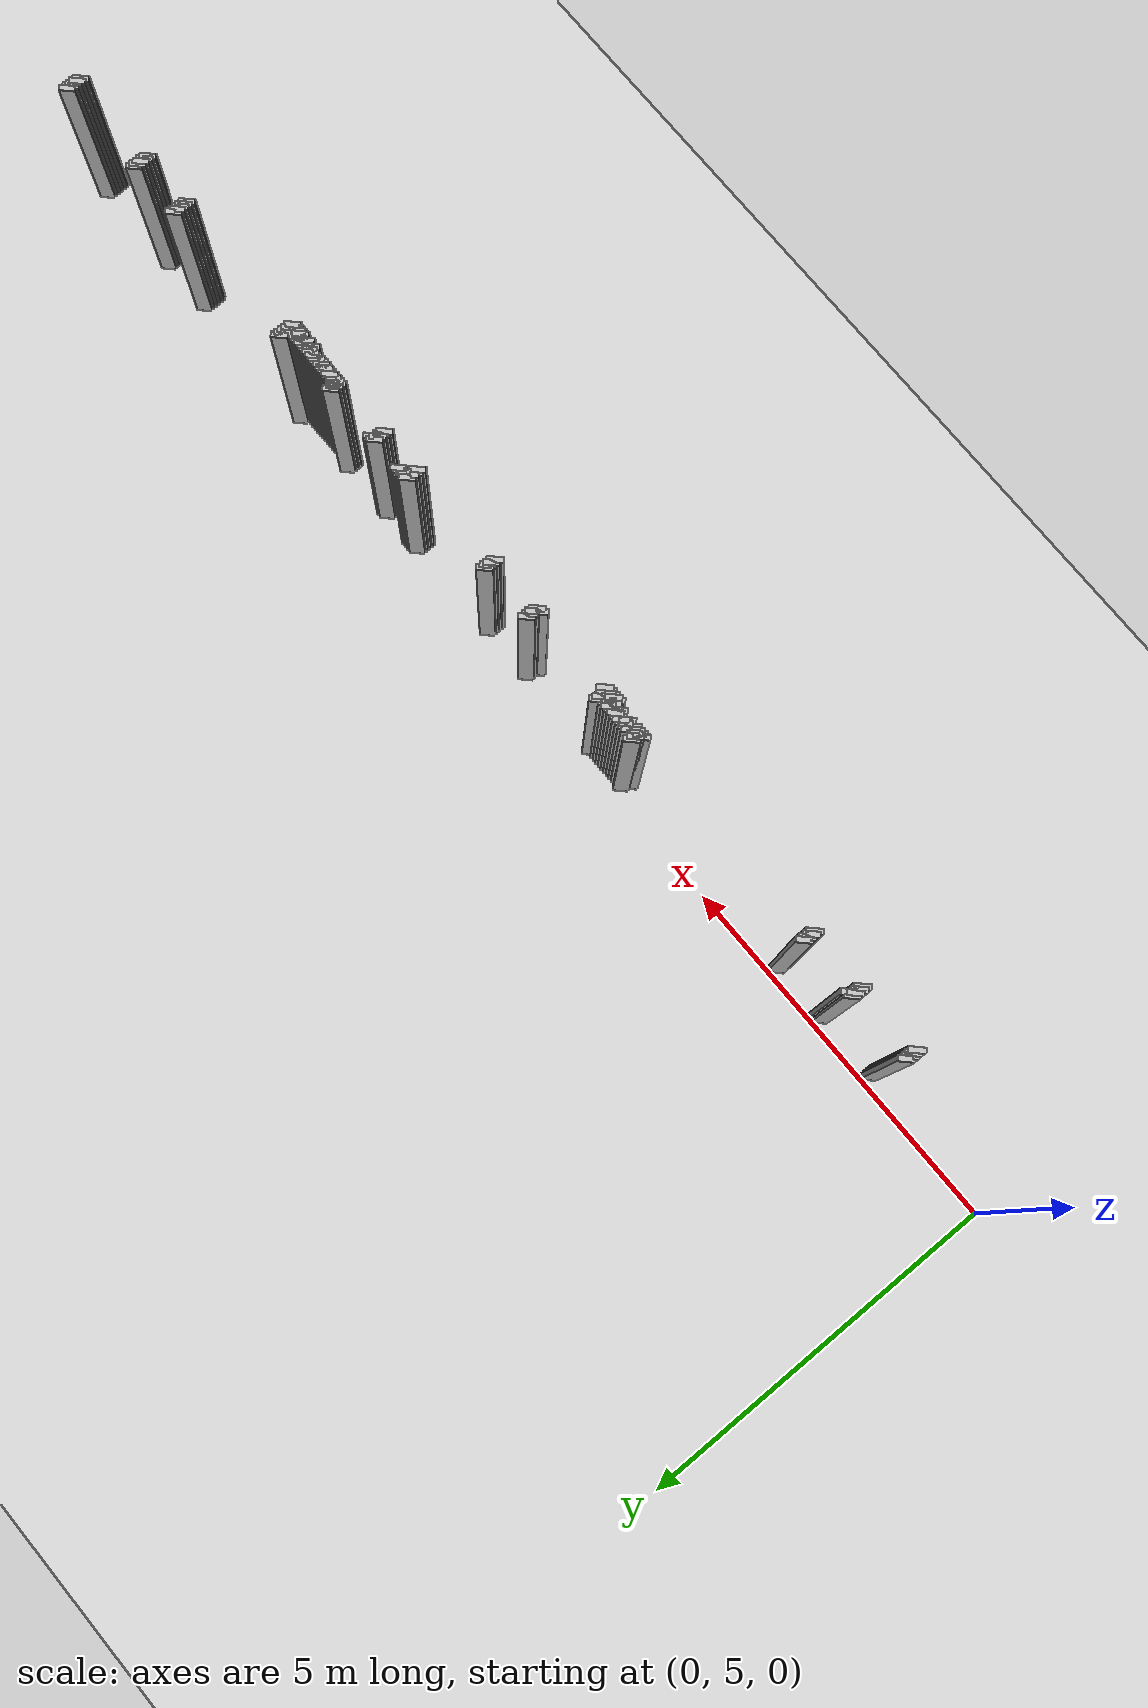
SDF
<sdf version="1.5">
 <world name="default">
  <include><uri>model://ground_plane</uri></include>
  <include><uri>model://sun</uri></include>
  <model name="grey_wall_3075">
   <static>1</static>
   <link name="link">
    <pose>13.0 4.95  1.4 0 0 -0.7853981633974483</pose>
    <collision name="collision">
     <geometry><box><size>0.07071067811865576 .2  2.8</size></box></geometry>
    </collision>
    <visual name="visual">
     <cast_shadows>0</cast_shadows>
     <geometry><box><size>0.07071067811865576 .2  2.8</size></box></geometry>
    </visual>
   </link>
  </model>
  <model name="grey_wall_3076">
   <static>1</static>
   <link name="link">
    <pose>15.0 4.95  1.4 0 0 -0.7853981633974483</pose>
    <collision name="collision">
     <geometry><box><size>0.07071067811865576 .2  2.8</size></box></geometry>
    </collision>
    <visual name="visual">
     <cast_shadows>0</cast_shadows>
     <geometry><box><size>0.07071067811865576 .2  2.8</size></box></geometry>
    </visual>
   </link>
  </model>
  <model name="grey_wall_3077">
   <static>1</static>
   <link name="link">
    <pose>15.75 4.95  1.4 0 0 -0.7853981633974483</pose>
    <collision name="collision">
     <geometry><box><size>0.07071067811865576 .2  2.8</size></box></geometry>
    </collision>
    <visual name="visual">
     <cast_shadows>0</cast_shadows>
     <geometry><box><size>0.07071067811865576 .2  2.8</size></box></geometry>
    </visual>
   </link>
  </model>
  <model name="grey_wall_3078">
   <static>1</static>
   <link name="link">
    <pose>17.05 4.95  1.4 0 0 -0.7853981633974838</pose>
    <collision name="collision">
     <geometry><box><size>0.07071067811865325 .2  2.8</size></box></geometry>
    </collision>
    <visual name="visual">
     <cast_shadows>0</cast_shadows>
     <geometry><box><size>0.07071067811865325 .2  2.8</size></box></geometry>
    </visual>
   </link>
  </model>
  <model name="grey_wall_3079">
   <static>1</static>
   <link name="link">
    <pose>2.0500000000000003 4.9  1.4 0 0 -0.7853981633974572</pose>
    <collision name="collision">
     <geometry><box><size>0.07071067811865513 .2  2.8</size></box></geometry>
    </collision>
    <visual name="visual">
     <cast_shadows>0</cast_shadows>
     <geometry><box><size>0.07071067811865513 .2  2.8</size></box></geometry>
    </visual>
   </link>
  </model>
  <model name="grey_wall_3080">
   <static>1</static>
   <link name="link">
    <pose>2.95 4.9  1.4 0 0 -0.7853981633974572</pose>
    <collision name="collision">
     <geometry><box><size>0.07071067811865513 .2  2.8</size></box></geometry>
    </collision>
    <visual name="visual">
     <cast_shadows>0</cast_shadows>
     <geometry><box><size>0.07071067811865513 .2  2.8</size></box></geometry>
    </visual>
   </link>
  </model>
  <model name="grey_wall_3081">
   <static>1</static>
   <link name="link">
    <pose>3.0 4.9  1.4 0 0 -0.7853981633974572</pose>
    <collision name="collision">
     <geometry><box><size>0.07071067811865513 .2  2.8</size></box></geometry>
    </collision>
    <visual name="visual">
     <cast_shadows>0</cast_shadows>
     <geometry><box><size>0.07071067811865513 .2  2.8</size></box></geometry>
    </visual>
   </link>
  </model>
  <model name="grey_wall_3082">
   <static>1</static>
   <link name="link">
    <pose>3.75 4.9  1.4 0 0 -0.7853981633974572</pose>
    <collision name="collision">
     <geometry><box><size>0.07071067811865513 .2  2.8</size></box></geometry>
    </collision>
    <visual name="visual">
     <cast_shadows>0</cast_shadows>
     <geometry><box><size>0.07071067811865513 .2  2.8</size></box></geometry>
    </visual>
   </link>
  </model>
  <model name="grey_wall_3083">
   <static>1</static>
   <link name="link">
    <pose>6.7 4.9  1.4 0 0 -0.7853981633974483</pose>
    <collision name="collision">
     <geometry><box><size>0.07071067811865576 .2  2.8</size></box></geometry>
    </collision>
    <visual name="visual">
     <cast_shadows>0</cast_shadows>
     <geometry><box><size>0.07071067811865576 .2  2.8</size></box></geometry>
    </visual>
   </link>
  </model>
  <model name="grey_wall_3084">
   <static>1</static>
   <link name="link">
    <pose>7.300000000000001 4.9  1.4 0 0 -0.7853981633974483</pose>
    <collision name="collision">
     <geometry><box><size>0.07071067811865576 .2  2.8</size></box></geometry>
    </collision>
    <visual name="visual">
     <cast_shadows>0</cast_shadows>
     <geometry><box><size>0.07071067811865576 .2  2.8</size></box></geometry>
    </visual>
   </link>
  </model>
  <model name="grey_wall_3085">
   <static>1</static>
   <link name="link">
    <pose>8.55 4.9  1.4 0 0 -0.7853981633974483</pose>
    <collision name="collision">
     <geometry><box><size>0.07071067811865576 .2  2.8</size></box></geometry>
    </collision>
    <visual name="visual">
     <cast_shadows>0</cast_shadows>
     <geometry><box><size>0.07071067811865576 .2  2.8</size></box></geometry>
    </visual>
   </link>
  </model>
  <model name="grey_wall_3086">
   <static>1</static>
   <link name="link">
    <pose>9.3 4.9  1.4 0 0 -0.7853981633974483</pose>
    <collision name="collision">
     <geometry><box><size>0.07071067811865576 .2  2.8</size></box></geometry>
    </collision>
    <visual name="visual">
     <cast_shadows>0</cast_shadows>
     <geometry><box><size>0.07071067811865576 .2  2.8</size></box></geometry>
    </visual>
   </link>
  </model>
  <model name="grey_wall_3087">
   <static>1</static>
   <link name="link">
    <pose>10.700000000000001 4.9  1.4 0 0 -0.7853981633974483</pose>
    <collision name="collision">
     <geometry><box><size>0.07071067811865576 .2  2.8</size></box></geometry>
    </collision>
    <visual name="visual">
     <cast_shadows>0</cast_shadows>
     <geometry><box><size>0.07071067811865576 .2  2.8</size></box></geometry>
    </visual>
   </link>
  </model>
  <model name="grey_wall_3088">
   <static>1</static>
   <link name="link">
    <pose>10.75 4.9  1.4 0 0 -0.7853981633974483</pose>
    <collision name="collision">
     <geometry><box><size>0.07071067811865576 .2  2.8</size></box></geometry>
    </collision>
    <visual name="visual">
     <cast_shadows>0</cast_shadows>
     <geometry><box><size>0.07071067811865576 .2  2.8</size></box></geometry>
    </visual>
   </link>
  </model>
  <model name="grey_wall_3089">
   <static>1</static>
   <link name="link">
    <pose>10.8 4.9  1.4 0 0 -0.7853981633974483</pose>
    <collision name="collision">
     <geometry><box><size>0.07071067811865576 .2  2.8</size></box></geometry>
    </collision>
    <visual name="visual">
     <cast_shadows>0</cast_shadows>
     <geometry><box><size>0.07071067811865576 .2  2.8</size></box></geometry>
    </visual>
   </link>
  </model>
  <model name="grey_wall_3090">
   <static>1</static>
   <link name="link">
    <pose>10.850000000000001 4.9  1.4 0 0 -0.7853981633974483</pose>
    <collision name="collision">
     <geometry><box><size>0.07071067811865576 .2  2.8</size></box></geometry>
    </collision>
    <visual name="visual">
     <cast_shadows>0</cast_shadows>
     <geometry><box><size>0.07071067811865576 .2  2.8</size></box></geometry>
    </visual>
   </link>
  </model>
  <model name="grey_wall_3091">
   <static>1</static>
   <link name="link">
    <pose>11.3 4.9  1.4 0 0 -0.7853981633974483</pose>
    <collision name="collision">
     <geometry><box><size>0.07071067811865576 .2  2.8</size></box></geometry>
    </collision>
    <visual name="visual">
     <cast_shadows>0</cast_shadows>
     <geometry><box><size>0.07071067811865576 .2  2.8</size></box></geometry>
    </visual>
   </link>
  </model>
  <model name="grey_wall_3092">
   <static>1</static>
   <link name="link">
    <pose>11.350000000000001 4.9  1.4 0 0 -0.7853981633974483</pose>
    <collision name="collision">
     <geometry><box><size>0.07071067811865576 .2  2.8</size></box></geometry>
    </collision>
    <visual name="visual">
     <cast_shadows>0</cast_shadows>
     <geometry><box><size>0.07071067811865576 .2  2.8</size></box></geometry>
    </visual>
   </link>
  </model>
  <model name="grey_wall_3093">
   <static>1</static>
   <link name="link">
    <pose>12.100000000000001 4.9  1.4 0 0 -0.7853981633974483</pose>
    <collision name="collision">
     <geometry><box><size>0.07071067811865576 .2  2.8</size></box></geometry>
    </collision>
    <visual name="visual">
     <cast_shadows>0</cast_shadows>
     <geometry><box><size>0.07071067811865576 .2  2.8</size></box></geometry>
    </visual>
   </link>
  </model>
  <model name="grey_wall_3094">
   <static>1</static>
   <link name="link">
    <pose>13.0 4.9  1.4 0 0 -0.7853981633974483</pose>
    <collision name="collision">
     <geometry><box><size>0.07071067811865576 .2  2.8</size></box></geometry>
    </collision>
    <visual name="visual">
     <cast_shadows>0</cast_shadows>
     <geometry><box><size>0.07071067811865576 .2  2.8</size></box></geometry>
    </visual>
   </link>
  </model>
  <model name="grey_wall_3095">
   <static>1</static>
   <link name="link">
    <pose>15.0 4.9  1.4 0 0 -0.7853981633974483</pose>
    <collision name="collision">
     <geometry><box><size>0.07071067811865576 .2  2.8</size></box></geometry>
    </collision>
    <visual name="visual">
     <cast_shadows>0</cast_shadows>
     <geometry><box><size>0.07071067811865576 .2  2.8</size></box></geometry>
    </visual>
   </link>
  </model>
  <model name="grey_wall_3096">
   <static>1</static>
   <link name="link">
    <pose>15.75 4.9  1.4 0 0 -0.7853981633974483</pose>
    <collision name="collision">
     <geometry><box><size>0.07071067811865576 .2  2.8</size></box></geometry>
    </collision>
    <visual name="visual">
     <cast_shadows>0</cast_shadows>
     <geometry><box><size>0.07071067811865576 .2  2.8</size></box></geometry>
    </visual>
   </link>
  </model>
  <model name="grey_wall_3097">
   <static>1</static>
   <link name="link">
    <pose>17.05 4.9  1.4 0 0 -0.7853981633974838</pose>
    <collision name="collision">
     <geometry><box><size>0.07071067811865325 .2  2.8</size></box></geometry>
    </collision>
    <visual name="visual">
     <cast_shadows>0</cast_shadows>
     <geometry><box><size>0.07071067811865325 .2  2.8</size></box></geometry>
    </visual>
   </link>
  </model>
  <model name="grey_wall_3098">
   <static>1</static>
   <link name="link">
    <pose>2.0500000000000003 4.8500000000000005  1.4 0 0 -0.7853981633974572</pose>
    <collision name="collision">
     <geometry><box><size>0.07071067811865513 .2  2.8</size></box></geometry>
    </collision>
    <visual name="visual">
     <cast_shadows>0</cast_shadows>
     <geometry><box><size>0.07071067811865513 .2  2.8</size></box></geometry>
    </visual>
   </link>
  </model>
  <model name="grey_wall_3099">
   <static>1</static>
   <link name="link">
    <pose>2.95 4.8500000000000005  1.4 0 0 -0.7853981633974572</pose>
    <collision name="collision">
     <geometry><box><size>0.07071067811865513 .2  2.8</size></box></geometry>
    </collision>
    <visual name="visual">
     <cast_shadows>0</cast_shadows>
     <geometry><box><size>0.07071067811865513 .2  2.8</size></box></geometry>
    </visual>
   </link>
  </model>
  <model name="grey_wall_3100">
   <static>1</static>
   <link name="link">
    <pose>3.75 4.8500000000000005  1.4 0 0 -0.7853981633974572</pose>
    <collision name="collision">
     <geometry><box><size>0.07071067811865513 .2  2.8</size></box></geometry>
    </collision>
    <visual name="visual">
     <cast_shadows>0</cast_shadows>
     <geometry><box><size>0.07071067811865513 .2  2.8</size></box></geometry>
    </visual>
   </link>
  </model>
  <model name="grey_wall_3101">
   <static>1</static>
   <link name="link">
    <pose>6.7 4.8500000000000005  1.4 0 0 -0.7853981633974483</pose>
    <collision name="collision">
     <geometry><box><size>0.07071067811865576 .2  2.8</size></box></geometry>
    </collision>
    <visual name="visual">
     <cast_shadows>0</cast_shadows>
     <geometry><box><size>0.07071067811865576 .2  2.8</size></box></geometry>
    </visual>
   </link>
  </model>
  <model name="grey_wall_3102">
   <static>1</static>
   <link name="link">
    <pose>6.800000000000001 4.8500000000000005  1.4 0 0 -0.7853981633974483</pose>
    <collision name="collision">
     <geometry><box><size>0.07071067811865576 .2  2.8</size></box></geometry>
    </collision>
    <visual name="visual">
     <cast_shadows>0</cast_shadows>
     <geometry><box><size>0.07071067811865576 .2  2.8</size></box></geometry>
    </visual>
   </link>
  </model>
  <model name="grey_wall_3103">
   <static>1</static>
   <link name="link">
    <pose>6.8500000000000005 4.8500000000000005  1.4 0 0 -0.7853981633974483</pose>
    <collision name="collision">
     <geometry><box><size>0.07071067811865576 .2  2.8</size></box></geometry>
    </collision>
    <visual name="visual">
     <cast_shadows>0</cast_shadows>
     <geometry><box><size>0.07071067811865576 .2  2.8</size></box></geometry>
    </visual>
   </link>
  </model>
  <model name="grey_wall_3104">
   <static>1</static>
   <link name="link">
    <pose>6.9 4.8500000000000005  1.4 0 0 -0.7853981633974483</pose>
    <collision name="collision">
     <geometry><box><size>0.07071067811865576 .2  2.8</size></box></geometry>
    </collision>
    <visual name="visual">
     <cast_shadows>0</cast_shadows>
     <geometry><box><size>0.07071067811865576 .2  2.8</size></box></geometry>
    </visual>
   </link>
  </model>
  <model name="grey_wall_3105">
   <static>1</static>
   <link name="link">
    <pose>6.95 4.8500000000000005  1.4 0 0 -0.7853981633974483</pose>
    <collision name="collision">
     <geometry><box><size>0.07071067811865576 .2  2.8</size></box></geometry>
    </collision>
    <visual name="visual">
     <cast_shadows>0</cast_shadows>
     <geometry><box><size>0.07071067811865576 .2  2.8</size></box></geometry>
    </visual>
   </link>
  </model>
  <model name="grey_wall_3106">
   <static>1</static>
   <link name="link">
    <pose>7.0 4.8500000000000005  1.4 0 0 -0.7853981633974483</pose>
    <collision name="collision">
     <geometry><box><size>0.07071067811865576 .2  2.8</size></box></geometry>
    </collision>
    <visual name="visual">
     <cast_shadows>0</cast_shadows>
     <geometry><box><size>0.07071067811865576 .2  2.8</size></box></geometry>
    </visual>
   </link>
  </model>
  <model name="grey_wall_3107">
   <static>1</static>
   <link name="link">
    <pose>7.050000000000001 4.8500000000000005  1.4 0 0 -0.7853981633974483</pose>
    <collision name="collision">
     <geometry><box><size>0.07071067811865576 .2  2.8</size></box></geometry>
    </collision>
    <visual name="visual">
     <cast_shadows>0</cast_shadows>
     <geometry><box><size>0.07071067811865576 .2  2.8</size></box></geometry>
    </visual>
   </link>
  </model>
  <model name="grey_wall_3108">
   <static>1</static>
   <link name="link">
    <pose>7.1000000000000005 4.8500000000000005  1.4 0 0 -0.7853981633974483</pose>
    <collision name="collision">
     <geometry><box><size>0.07071067811865576 .2  2.8</size></box></geometry>
    </collision>
    <visual name="visual">
     <cast_shadows>0</cast_shadows>
     <geometry><box><size>0.07071067811865576 .2  2.8</size></box></geometry>
    </visual>
   </link>
  </model>
  <model name="grey_wall_3109">
   <static>1</static>
   <link name="link">
    <pose>7.15 4.8500000000000005  1.4 0 0 -0.7853981633974483</pose>
    <collision name="collision">
     <geometry><box><size>0.07071067811865576 .2  2.8</size></box></geometry>
    </collision>
    <visual name="visual">
     <cast_shadows>0</cast_shadows>
     <geometry><box><size>0.07071067811865576 .2  2.8</size></box></geometry>
    </visual>
   </link>
  </model>
  <model name="grey_wall_3110">
   <static>1</static>
   <link name="link">
    <pose>7.2 4.8500000000000005  1.4 0 0 -0.7853981633974483</pose>
    <collision name="collision">
     <geometry><box><size>0.07071067811865576 .2  2.8</size></box></geometry>
    </collision>
    <visual name="visual">
     <cast_shadows>0</cast_shadows>
     <geometry><box><size>0.07071067811865576 .2  2.8</size></box></geometry>
    </visual>
   </link>
  </model>
  <model name="grey_wall_3111">
   <static>1</static>
   <link name="link">
    <pose>7.25 4.8500000000000005  1.4 0 0 -0.7853981633974483</pose>
    <collision name="collision">
     <geometry><box><size>0.07071067811865576 .2  2.8</size></box></geometry>
    </collision>
    <visual name="visual">
     <cast_shadows>0</cast_shadows>
     <geometry><box><size>0.07071067811865576 .2  2.8</size></box></geometry>
    </visual>
   </link>
  </model>
  <model name="grey_wall_3112">
   <static>1</static>
   <link name="link">
    <pose>7.300000000000001 4.8500000000000005  1.4 0 0 -0.7853981633974483</pose>
    <collision name="collision">
     <geometry><box><size>0.07071067811865576 .2  2.8</size></box></geometry>
    </collision>
    <visual name="visual">
     <cast_shadows>0</cast_shadows>
     <geometry><box><size>0.07071067811865576 .2  2.8</size></box></geometry>
    </visual>
   </link>
  </model>
  <model name="grey_wall_3113">
   <static>1</static>
   <link name="link">
    <pose>8.55 4.8500000000000005  1.4 0 0 -0.7853981633974483</pose>
    <collision name="collision">
     <geometry><box><size>0.07071067811865576 .2  2.8</size></box></geometry>
    </collision>
    <visual name="visual">
     <cast_shadows>0</cast_shadows>
     <geometry><box><size>0.07071067811865576 .2  2.8</size></box></geometry>
    </visual>
   </link>
  </model>
  <model name="grey_wall_3114">
   <static>1</static>
   <link name="link">
    <pose>9.3 4.8500000000000005  1.4 0 0 -0.7853981633974483</pose>
    <collision name="collision">
     <geometry><box><size>0.07071067811865576 .2  2.8</size></box></geometry>
    </collision>
    <visual name="visual">
     <cast_shadows>0</cast_shadows>
     <geometry><box><size>0.07071067811865576 .2  2.8</size></box></geometry>
    </visual>
   </link>
  </model>
  <model name="grey_wall_3115">
   <static>1</static>
   <link name="link">
    <pose>10.700000000000001 4.8500000000000005  1.4 0 0 -0.7853981633974483</pose>
    <collision name="collision">
     <geometry><box><size>0.07071067811865576 .2  2.8</size></box></geometry>
    </collision>
    <visual name="visual">
     <cast_shadows>0</cast_shadows>
     <geometry><box><size>0.07071067811865576 .2  2.8</size></box></geometry>
    </visual>
   </link>
  </model>
  <model name="grey_wall_3116">
   <static>1</static>
   <link name="link">
    <pose>11.3 4.8500000000000005  1.4 0 0 -0.7853981633974483</pose>
    <collision name="collision">
     <geometry><box><size>0.07071067811865576 .2  2.8</size></box></geometry>
    </collision>
    <visual name="visual">
     <cast_shadows>0</cast_shadows>
     <geometry><box><size>0.07071067811865576 .2  2.8</size></box></geometry>
    </visual>
   </link>
  </model>
  <model name="grey_wall_3117">
   <static>1</static>
   <link name="link">
    <pose>12.100000000000001 4.8500000000000005  1.4 0 0 -0.7853981633974483</pose>
    <collision name="collision">
     <geometry><box><size>0.07071067811865576 .2  2.8</size></box></geometry>
    </collision>
    <visual name="visual">
     <cast_shadows>0</cast_shadows>
     <geometry><box><size>0.07071067811865576 .2  2.8</size></box></geometry>
    </visual>
   </link>
  </model>
  <model name="grey_wall_3118">
   <static>1</static>
   <link name="link">
    <pose>13.0 4.8500000000000005  1.4 0 0 -0.7853981633974483</pose>
    <collision name="collision">
     <geometry><box><size>0.07071067811865576 .2  2.8</size></box></geometry>
    </collision>
    <visual name="visual">
     <cast_shadows>0</cast_shadows>
     <geometry><box><size>0.07071067811865576 .2  2.8</size></box></geometry>
    </visual>
   </link>
  </model>
  <model name="grey_wall_3119">
   <static>1</static>
   <link name="link">
    <pose>15.0 4.8500000000000005  1.4 0 0 -0.7853981633974483</pose>
    <collision name="collision">
     <geometry><box><size>0.07071067811865576 .2  2.8</size></box></geometry>
    </collision>
    <visual name="visual">
     <cast_shadows>0</cast_shadows>
     <geometry><box><size>0.07071067811865576 .2  2.8</size></box></geometry>
    </visual>
   </link>
  </model>
  <model name="grey_wall_3120">
   <static>1</static>
   <link name="link">
    <pose>15.75 4.8500000000000005  1.4 0 0 -0.7853981633974483</pose>
    <collision name="collision">
     <geometry><box><size>0.07071067811865576 .2  2.8</size></box></geometry>
    </collision>
    <visual name="visual">
     <cast_shadows>0</cast_shadows>
     <geometry><box><size>0.07071067811865576 .2  2.8</size></box></geometry>
    </visual>
   </link>
  </model>
  <model name="grey_wall_3121">
   <static>1</static>
   <link name="link">
    <pose>17.05 4.8500000000000005  1.4 0 0 -0.7853981633974838</pose>
    <collision name="collision">
     <geometry><box><size>0.07071067811865325 .2  2.8</size></box></geometry>
    </collision>
    <visual name="visual">
     <cast_shadows>0</cast_shadows>
     <geometry><box><size>0.07071067811865325 .2  2.8</size></box></geometry>
    </visual>
   </link>
  </model>
  <model name="grey_wall_3122">
   <static>1</static>
   <link name="link">
    <pose>2.0500000000000003 4.800000000000001  1.4 0 0 -0.7853981633974572</pose>
    <collision name="collision">
     <geometry><box><size>0.07071067811865513 .2  2.8</size></box></geometry>
    </collision>
    <visual name="visual">
     <cast_shadows>0</cast_shadows>
     <geometry><box><size>0.07071067811865513 .2  2.8</size></box></geometry>
    </visual>
   </link>
  </model>
  <model name="grey_wall_3123">
   <static>1</static>
   <link name="link">
    <pose>2.95 4.800000000000001  1.4 0 0 -0.7853981633974572</pose>
    <collision name="collision">
     <geometry><box><size>0.07071067811865513 .2  2.8</size></box></geometry>
    </collision>
    <visual name="visual">
     <cast_shadows>0</cast_shadows>
     <geometry><box><size>0.07071067811865513 .2  2.8</size></box></geometry>
    </visual>
   </link>
  </model>
  <model name="grey_wall_3124">
   <static>1</static>
   <link name="link">
    <pose>3.75 4.800000000000001  1.4 0 0 -0.7853981633974572</pose>
    <collision name="collision">
     <geometry><box><size>0.07071067811865513 .2  2.8</size></box></geometry>
    </collision>
    <visual name="visual">
     <cast_shadows>0</cast_shadows>
     <geometry><box><size>0.07071067811865513 .2  2.8</size></box></geometry>
    </visual>
   </link>
  </model>
  <model name="grey_wall_3125">
   <static>1</static>
   <link name="link">
    <pose>6.65 4.800000000000001  1.4 0 0 -0.7853981633974483</pose>
    <collision name="collision">
     <geometry><box><size>0.07071067811865576 .2  2.8</size></box></geometry>
    </collision>
    <visual name="visual">
     <cast_shadows>0</cast_shadows>
     <geometry><box><size>0.07071067811865576 .2  2.8</size></box></geometry>
    </visual>
   </link>
  </model>
  <model name="grey_wall_3126">
   <static>1</static>
   <link name="link">
    <pose>6.7 4.800000000000001  1.4 0 0 -0.7853981633974483</pose>
    <collision name="collision">
     <geometry><box><size>0.07071067811865576 .2  2.8</size></box></geometry>
    </collision>
    <visual name="visual">
     <cast_shadows>0</cast_shadows>
     <geometry><box><size>0.07071067811865576 .2  2.8</size></box></geometry>
    </visual>
   </link>
  </model>
  <model name="grey_wall_3127">
   <static>1</static>
   <link name="link">
    <pose>6.75 4.800000000000001  1.4 0 0 -0.7853981633974483</pose>
    <collision name="collision">
     <geometry><box><size>0.07071067811865576 .2  2.8</size></box></geometry>
    </collision>
    <visual name="visual">
     <cast_shadows>0</cast_shadows>
     <geometry><box><size>0.07071067811865576 .2  2.8</size></box></geometry>
    </visual>
   </link>
  </model>
  <model name="grey_wall_3128">
   <static>1</static>
   <link name="link">
    <pose>6.800000000000001 4.800000000000001  1.4 0 0 -0.7853981633974483</pose>
    <collision name="collision">
     <geometry><box><size>0.07071067811865576 .2  2.8</size></box></geometry>
    </collision>
    <visual name="visual">
     <cast_shadows>0</cast_shadows>
     <geometry><box><size>0.07071067811865576 .2  2.8</size></box></geometry>
    </visual>
   </link>
  </model>
  <model name="grey_wall_3129">
   <static>1</static>
   <link name="link">
    <pose>6.9 4.800000000000001  1.4 0 0 -0.7853981633974483</pose>
    <collision name="collision">
     <geometry><box><size>0.07071067811865576 .2  2.8</size></box></geometry>
    </collision>
    <visual name="visual">
     <cast_shadows>0</cast_shadows>
     <geometry><box><size>0.07071067811865576 .2  2.8</size></box></geometry>
    </visual>
   </link>
  </model>
  <model name="grey_wall_3130">
   <static>1</static>
   <link name="link">
    <pose>7.050000000000001 4.800000000000001  1.4 0 0 -0.7853981633974483</pose>
    <collision name="collision">
     <geometry><box><size>0.07071067811865576 .2  2.8</size></box></geometry>
    </collision>
    <visual name="visual">
     <cast_shadows>0</cast_shadows>
     <geometry><box><size>0.07071067811865576 .2  2.8</size></box></geometry>
    </visual>
   </link>
  </model>
  <model name="grey_wall_3131">
   <static>1</static>
   <link name="link">
    <pose>7.15 4.800000000000001  1.4 0 0 -0.7853981633974483</pose>
    <collision name="collision">
     <geometry><box><size>0.07071067811865576 .2  2.8</size></box></geometry>
    </collision>
    <visual name="visual">
     <cast_shadows>0</cast_shadows>
     <geometry><box><size>0.07071067811865576 .2  2.8</size></box></geometry>
    </visual>
   </link>
  </model>
  <model name="grey_wall_3132">
   <static>1</static>
   <link name="link">
    <pose>7.25 4.800000000000001  1.4 0 0 -0.7853981633974483</pose>
    <collision name="collision">
     <geometry><box><size>0.07071067811865576 .2  2.8</size></box></geometry>
    </collision>
    <visual name="visual">
     <cast_shadows>0</cast_shadows>
     <geometry><box><size>0.07071067811865576 .2  2.8</size></box></geometry>
    </visual>
   </link>
  </model>
  <model name="grey_wall_3133">
   <static>1</static>
   <link name="link">
    <pose>7.300000000000001 4.800000000000001  1.4 0 0 -0.7853981633974483</pose>
    <collision name="collision">
     <geometry><box><size>0.07071067811865576 .2  2.8</size></box></geometry>
    </collision>
    <visual name="visual">
     <cast_shadows>0</cast_shadows>
     <geometry><box><size>0.07071067811865576 .2  2.8</size></box></geometry>
    </visual>
   </link>
  </model>
  <model name="grey_wall_3134">
   <static>1</static>
   <link name="link">
    <pose>8.55 4.800000000000001  1.4 0 0 -0.7853981633974483</pose>
    <collision name="collision">
     <geometry><box><size>0.07071067811865576 .2  2.8</size></box></geometry>
    </collision>
    <visual name="visual">
     <cast_shadows>0</cast_shadows>
     <geometry><box><size>0.07071067811865576 .2  2.8</size></box></geometry>
    </visual>
   </link>
  </model>
  <model name="grey_wall_3135">
   <static>1</static>
   <link name="link">
    <pose>9.3 4.800000000000001  1.4 0 0 -0.7853981633974483</pose>
    <collision name="collision">
     <geometry><box><size>0.07071067811865576 .2  2.8</size></box></geometry>
    </collision>
    <visual name="visual">
     <cast_shadows>0</cast_shadows>
     <geometry><box><size>0.07071067811865576 .2  2.8</size></box></geometry>
    </visual>
   </link>
  </model>
  <model name="grey_wall_3136">
   <static>1</static>
   <link name="link">
    <pose>10.700000000000001 4.800000000000001  1.4 0 0 -0.7853981633974483</pose>
    <collision name="collision">
     <geometry><box><size>0.07071067811865576 .2  2.8</size></box></geometry>
    </collision>
    <visual name="visual">
     <cast_shadows>0</cast_shadows>
     <geometry><box><size>0.07071067811865576 .2  2.8</size></box></geometry>
    </visual>
   </link>
  </model>
  <model name="grey_wall_3137">
   <static>1</static>
   <link name="link">
    <pose>11.3 4.800000000000001  1.4 0 0 -0.7853981633974483</pose>
    <collision name="collision">
     <geometry><box><size>0.07071067811865576 .2  2.8</size></box></geometry>
    </collision>
    <visual name="visual">
     <cast_shadows>0</cast_shadows>
     <geometry><box><size>0.07071067811865576 .2  2.8</size></box></geometry>
    </visual>
   </link>
  </model>
  <model name="grey_wall_3138">
   <static>1</static>
   <link name="link">
    <pose>12.100000000000001 4.800000000000001  1.4 0 0 -0.7853981633974483</pose>
    <collision name="collision">
     <geometry><box><size>0.07071067811865576 .2  2.8</size></box></geometry>
    </collision>
    <visual name="visual">
     <cast_shadows>0</cast_shadows>
     <geometry><box><size>0.07071067811865576 .2  2.8</size></box></geometry>
    </visual>
   </link>
  </model>
  <model name="grey_wall_3139">
   <static>1</static>
   <link name="link">
    <pose>12.15 4.800000000000001  1.4 0 0 -0.7853981633974483</pose>
    <collision name="collision">
     <geometry><box><size>0.07071067811865576 .2  2.8</size></box></geometry>
    </collision>
    <visual name="visual">
     <cast_shadows>0</cast_shadows>
     <geometry><box><size>0.07071067811865576 .2  2.8</size></box></geometry>
    </visual>
   </link>
  </model>
  <model name="grey_wall_3140">
   <static>1</static>
   <link name="link">
    <pose>12.200000000000001 4.800000000000001  1.4 0 0 -0.7853981633974483</pose>
    <collision name="collision">
     <geometry><box><size>0.07071067811865576 .2  2.8</size></box></geometry>
    </collision>
    <visual name="visual">
     <cast_shadows>0</cast_shadows>
     <geometry><box><size>0.07071067811865576 .2  2.8</size></box></geometry>
    </visual>
   </link>
  </model>
  <model name="grey_wall_3141">
   <static>1</static>
   <link name="link">
    <pose>12.25 4.800000000000001  1.4 0 0 -0.7853981633974483</pose>
    <collision name="collision">
     <geometry><box><size>0.07071067811865576 .2  2.8</size></box></geometry>
    </collision>
    <visual name="visual">
     <cast_shadows>0</cast_shadows>
     <geometry><box><size>0.07071067811865576 .2  2.8</size></box></geometry>
    </visual>
   </link>
  </model>
  <model name="grey_wall_3142">
   <static>1</static>
   <link name="link">
    <pose>12.3 4.800000000000001  1.4 0 0 -0.7853981633974483</pose>
    <collision name="collision">
     <geometry><box><size>0.07071067811865576 .2  2.8</size></box></geometry>
    </collision>
    <visual name="visual">
     <cast_shadows>0</cast_shadows>
     <geometry><box><size>0.07071067811865576 .2  2.8</size></box></geometry>
    </visual>
   </link>
  </model>
  <model name="grey_wall_3143">
   <static>1</static>
   <link name="link">
    <pose>12.350000000000001 4.800000000000001  1.4 0 0 -0.7853981633974483</pose>
    <collision name="collision">
     <geometry><box><size>0.07071067811865576 .2  2.8</size></box></geometry>
    </collision>
    <visual name="visual">
     <cast_shadows>0</cast_shadows>
     <geometry><box><size>0.07071067811865576 .2  2.8</size></box></geometry>
    </visual>
   </link>
  </model>
  <model name="grey_wall_3144">
   <static>1</static>
   <link name="link">
    <pose>12.4 4.800000000000001  1.4 0 0 -0.7853981633974483</pose>
    <collision name="collision">
     <geometry><box><size>0.07071067811865576 .2  2.8</size></box></geometry>
    </collision>
    <visual name="visual">
     <cast_shadows>0</cast_shadows>
     <geometry><box><size>0.07071067811865576 .2  2.8</size></box></geometry>
    </visual>
   </link>
  </model>
  <model name="grey_wall_3145">
   <static>1</static>
   <link name="link">
    <pose>12.450000000000001 4.800000000000001  1.4 0 0 -0.7853981633974483</pose>
    <collision name="collision">
     <geometry><box><size>0.07071067811865576 .2  2.8</size></box></geometry>
    </collision>
    <visual name="visual">
     <cast_shadows>0</cast_shadows>
     <geometry><box><size>0.07071067811865576 .2  2.8</size></box></geometry>
    </visual>
   </link>
  </model>
  <model name="grey_wall_3146">
   <static>1</static>
   <link name="link">
    <pose>12.5 4.800000000000001  1.4 0 0 -0.7853981633974483</pose>
    <collision name="collision">
     <geometry><box><size>0.07071067811865576 .2  2.8</size></box></geometry>
    </collision>
    <visual name="visual">
     <cast_shadows>0</cast_shadows>
     <geometry><box><size>0.07071067811865576 .2  2.8</size></box></geometry>
    </visual>
   </link>
  </model>
  <model name="grey_wall_3147">
   <static>1</static>
   <link name="link">
    <pose>12.55 4.800000000000001  1.4 0 0 -0.7853981633974483</pose>
    <collision name="collision">
     <geometry><box><size>0.07071067811865576 .2  2.8</size></box></geometry>
    </collision>
    <visual name="visual">
     <cast_shadows>0</cast_shadows>
     <geometry><box><size>0.07071067811865576 .2  2.8</size></box></geometry>
    </visual>
   </link>
  </model>
  <model name="grey_wall_3148">
   <static>1</static>
   <link name="link">
    <pose>12.600000000000001 4.800000000000001  1.4 0 0 -0.7853981633974483</pose>
    <collision name="collision">
     <geometry><box><size>0.07071067811865576 .2  2.8</size></box></geometry>
    </collision>
    <visual name="visual">
     <cast_shadows>0</cast_shadows>
     <geometry><box><size>0.07071067811865576 .2  2.8</size></box></geometry>
    </visual>
   </link>
  </model>
  <model name="grey_wall_3149">
   <static>1</static>
   <link name="link">
    <pose>12.65 4.800000000000001  1.4 0 0 -0.7853981633974483</pose>
    <collision name="collision">
     <geometry><box><size>0.07071067811865576 .2  2.8</size></box></geometry>
    </collision>
    <visual name="visual">
     <cast_shadows>0</cast_shadows>
     <geometry><box><size>0.07071067811865576 .2  2.8</size></box></geometry>
    </visual>
   </link>
  </model>
  <model name="grey_wall_3150">
   <static>1</static>
   <link name="link">
    <pose>12.700000000000001 4.800000000000001  1.4 0 0 -0.7853981633974483</pose>
    <collision name="collision">
     <geometry><box><size>0.07071067811865576 .2  2.8</size></box></geometry>
    </collision>
    <visual name="visual">
     <cast_shadows>0</cast_shadows>
     <geometry><box><size>0.07071067811865576 .2  2.8</size></box></geometry>
    </visual>
   </link>
  </model>
  <model name="grey_wall_3151">
   <static>1</static>
   <link name="link">
    <pose>12.75 4.800000000000001  1.4 0 0 -0.7853981633974483</pose>
    <collision name="collision">
     <geometry><box><size>0.07071067811865576 .2  2.8</size></box></geometry>
    </collision>
    <visual name="visual">
     <cast_shadows>0</cast_shadows>
     <geometry><box><size>0.07071067811865576 .2  2.8</size></box></geometry>
    </visual>
   </link>
  </model>
  <model name="grey_wall_3152">
   <static>1</static>
   <link name="link">
    <pose>12.8 4.800000000000001  1.4 0 0 -0.7853981633974483</pose>
    <collision name="collision">
     <geometry><box><size>0.07071067811865576 .2  2.8</size></box></geometry>
    </collision>
    <visual name="visual">
     <cast_shadows>0</cast_shadows>
     <geometry><box><size>0.07071067811865576 .2  2.8</size></box></geometry>
    </visual>
   </link>
  </model>
  <model name="grey_wall_3153">
   <static>1</static>
   <link name="link">
    <pose>12.850000000000001 4.800000000000001  1.4 0 0 -0.7853981633974483</pose>
    <collision name="collision">
     <geometry><box><size>0.07071067811865576 .2  2.8</size></box></geometry>
    </collision>
    <visual name="visual">
     <cast_shadows>0</cast_shadows>
     <geometry><box><size>0.07071067811865576 .2  2.8</size></box></geometry>
    </visual>
   </link>
  </model>
  <model name="grey_wall_3154">
   <static>1</static>
   <link name="link">
    <pose>13.0 4.800000000000001  1.4 0 0 -0.7853981633974483</pose>
    <collision name="collision">
     <geometry><box><size>0.07071067811865576 .2  2.8</size></box></geometry>
    </collision>
    <visual name="visual">
     <cast_shadows>0</cast_shadows>
     <geometry><box><size>0.07071067811865576 .2  2.8</size></box></geometry>
    </visual>
   </link>
  </model>
  <model name="grey_wall_3155">
   <static>1</static>
   <link name="link">
    <pose>15.0 4.800000000000001  1.4 0 0 -0.7853981633974483</pose>
    <collision name="collision">
     <geometry><box><size>0.07071067811865576 .2  2.8</size></box></geometry>
    </collision>
    <visual name="visual">
     <cast_shadows>0</cast_shadows>
     <geometry><box><size>0.07071067811865576 .2  2.8</size></box></geometry>
    </visual>
   </link>
  </model>
  <model name="grey_wall_3156">
   <static>1</static>
   <link name="link">
    <pose>15.75 4.800000000000001  1.4 0 0 -0.7853981633974483</pose>
    <collision name="collision">
     <geometry><box><size>0.07071067811865576 .2  2.8</size></box></geometry>
    </collision>
    <visual name="visual">
     <cast_shadows>0</cast_shadows>
     <geometry><box><size>0.07071067811865576 .2  2.8</size></box></geometry>
    </visual>
   </link>
  </model>
  <model name="grey_wall_3157">
   <static>1</static>
   <link name="link">
    <pose>17.05 4.800000000000001  1.4 0 0 -0.7853981633974838</pose>
    <collision name="collision">
     <geometry><box><size>0.07071067811865325 .2  2.8</size></box></geometry>
    </collision>
    <visual name="visual">
     <cast_shadows>0</cast_shadows>
     <geometry><box><size>0.07071067811865325 .2  2.8</size></box></geometry>
    </visual>
   </link>
  </model>
  <model name="grey_wall_3158">
   <static>1</static>
   <link name="link">
    <pose>2.0500000000000003 4.75  1.4 0 0 -0.7853981633974572</pose>
    <collision name="collision">
     <geometry><box><size>0.07071067811865513 .2  2.8</size></box></geometry>
    </collision>
    <visual name="visual">
     <cast_shadows>0</cast_shadows>
     <geometry><box><size>0.07071067811865513 .2  2.8</size></box></geometry>
    </visual>
   </link>
  </model>
  <model name="grey_wall_3159">
   <static>1</static>
   <link name="link">
    <pose>2.95 4.75  1.4 0 0 -0.7853981633974572</pose>
    <collision name="collision">
     <geometry><box><size>0.07071067811865513 .2  2.8</size></box></geometry>
    </collision>
    <visual name="visual">
     <cast_shadows>0</cast_shadows>
     <geometry><box><size>0.07071067811865513 .2  2.8</size></box></geometry>
    </visual>
   </link>
  </model>
  <model name="grey_wall_3160">
   <static>1</static>
   <link name="link">
    <pose>3.75 4.75  1.4 0 0 -0.7853981633974572</pose>
    <collision name="collision">
     <geometry><box><size>0.07071067811865513 .2  2.8</size></box></geometry>
    </collision>
    <visual name="visual">
     <cast_shadows>0</cast_shadows>
     <geometry><box><size>0.07071067811865513 .2  2.8</size></box></geometry>
    </visual>
   </link>
  </model>
  <model name="grey_wall_3161">
   <static>1</static>
   <link name="link">
    <pose>7.15 4.75  1.4 0 0 -0.7853981633974483</pose>
    <collision name="collision">
     <geometry><box><size>0.07071067811865576 .2  2.8</size></box></geometry>
    </collision>
    <visual name="visual">
     <cast_shadows>0</cast_shadows>
     <geometry><box><size>0.07071067811865576 .2  2.8</size></box></geometry>
    </visual>
   </link>
  </model>
  <model name="grey_wall_3162">
   <static>1</static>
   <link name="link">
    <pose>7.2 4.75  1.4 0 0 -0.7853981633974483</pose>
    <collision name="collision">
     <geometry><box><size>0.07071067811865576 .2  2.8</size></box></geometry>
    </collision>
    <visual name="visual">
     <cast_shadows>0</cast_shadows>
     <geometry><box><size>0.07071067811865576 .2  2.8</size></box></geometry>
    </visual>
   </link>
  </model>
  <model name="grey_wall_3163">
   <static>1</static>
   <link name="link">
    <pose>7.25 4.75  1.4 0 0 -0.7853981633974483</pose>
    <collision name="collision">
     <geometry><box><size>0.07071067811865576 .2  2.8</size></box></geometry>
    </collision>
    <visual name="visual">
     <cast_shadows>0</cast_shadows>
     <geometry><box><size>0.07071067811865576 .2  2.8</size></box></geometry>
    </visual>
   </link>
  </model>
  <model name="grey_wall_3164">
   <static>1</static>
   <link name="link">
    <pose>7.300000000000001 4.75  1.4 0 0 -0.7853981633974483</pose>
    <collision name="collision">
     <geometry><box><size>0.07071067811865576 .2  2.8</size></box></geometry>
    </collision>
    <visual name="visual">
     <cast_shadows>0</cast_shadows>
     <geometry><box><size>0.07071067811865576 .2  2.8</size></box></geometry>
    </visual>
   </link>
  </model>
  <model name="grey_wall_3165">
   <static>1</static>
   <link name="link">
    <pose>7.3500000000000005 4.75  1.4 0 0 -0.7853981633974483</pose>
    <collision name="collision">
     <geometry><box><size>0.07071067811865576 .2  2.8</size></box></geometry>
    </collision>
    <visual name="visual">
     <cast_shadows>0</cast_shadows>
     <geometry><box><size>0.07071067811865576 .2  2.8</size></box></geometry>
    </visual>
   </link>
  </model>
  <model name="grey_wall_3166">
   <static>1</static>
   <link name="link">
    <pose>8.5 4.75  1.4 0 0 -0.7853981633974483</pose>
    <collision name="collision">
     <geometry><box><size>0.07071067811865576 .2  2.8</size></box></geometry>
    </collision>
    <visual name="visual">
     <cast_shadows>0</cast_shadows>
     <geometry><box><size>0.07071067811865576 .2  2.8</size></box></geometry>
    </visual>
   </link>
  </model>
  <model name="grey_wall_3167">
   <static>1</static>
   <link name="link">
    <pose>8.55 4.75  1.4 0 0 -0.7853981633974483</pose>
    <collision name="collision">
     <geometry><box><size>0.07071067811865576 .2  2.8</size></box></geometry>
    </collision>
    <visual name="visual">
     <cast_shadows>0</cast_shadows>
     <geometry><box><size>0.07071067811865576 .2  2.8</size></box></geometry>
    </visual>
   </link>
  </model>
  <model name="grey_wall_3168">
   <static>1</static>
   <link name="link">
    <pose>9.3 4.75  1.4 0 0 -0.7853981633974483</pose>
    <collision name="collision">
     <geometry><box><size>0.07071067811865576 .2  2.8</size></box></geometry>
    </collision>
    <visual name="visual">
     <cast_shadows>0</cast_shadows>
     <geometry><box><size>0.07071067811865576 .2  2.8</size></box></geometry>
    </visual>
   </link>
  </model>
  <model name="grey_wall_3169">
   <static>1</static>
   <link name="link">
    <pose>10.700000000000001 4.75  1.4 0 0 -0.7853981633974483</pose>
    <collision name="collision">
     <geometry><box><size>0.07071067811865576 .2  2.8</size></box></geometry>
    </collision>
    <visual name="visual">
     <cast_shadows>0</cast_shadows>
     <geometry><box><size>0.07071067811865576 .2  2.8</size></box></geometry>
    </visual>
   </link>
  </model>
  <model name="grey_wall_3170">
   <static>1</static>
   <link name="link">
    <pose>11.3 4.75  1.4 0 0 -0.7853981633974483</pose>
    <collision name="collision">
     <geometry><box><size>0.07071067811865576 .2  2.8</size></box></geometry>
    </collision>
    <visual name="visual">
     <cast_shadows>0</cast_shadows>
     <geometry><box><size>0.07071067811865576 .2  2.8</size></box></geometry>
    </visual>
   </link>
  </model>
  <model name="grey_wall_3171">
   <static>1</static>
   <link name="link">
    <pose>12.65 4.75  1.4 0 0 -0.7853981633974483</pose>
    <collision name="collision">
     <geometry><box><size>0.07071067811865576 .2  2.8</size></box></geometry>
    </collision>
    <visual name="visual">
     <cast_shadows>0</cast_shadows>
     <geometry><box><size>0.07071067811865576 .2  2.8</size></box></geometry>
    </visual>
   </link>
  </model>
  <model name="grey_wall_3172">
   <static>1</static>
   <link name="link">
    <pose>12.75 4.75  1.4 0 0 -0.7853981633974483</pose>
    <collision name="collision">
     <geometry><box><size>0.07071067811865576 .2  2.8</size></box></geometry>
    </collision>
    <visual name="visual">
     <cast_shadows>0</cast_shadows>
     <geometry><box><size>0.07071067811865576 .2  2.8</size></box></geometry>
    </visual>
   </link>
  </model>
  <model name="grey_wall_3173">
   <static>1</static>
   <link name="link">
    <pose>12.850000000000001 4.75  1.4 0 0 -0.7853981633974483</pose>
    <collision name="collision">
     <geometry><box><size>0.07071067811865576 .2  2.8</size></box></geometry>
    </collision>
    <visual name="visual">
     <cast_shadows>0</cast_shadows>
     <geometry><box><size>0.07071067811865576 .2  2.8</size></box></geometry>
    </visual>
   </link>
  </model>
  <model name="grey_wall_3174">
   <static>1</static>
   <link name="link">
    <pose>12.9 4.75  1.4 0 0 -0.7853981633974483</pose>
    <collision name="collision">
     <geometry><box><size>0.07071067811865576 .2  2.8</size></box></geometry>
    </collision>
    <visual name="visual">
     <cast_shadows>0</cast_shadows>
     <geometry><box><size>0.07071067811865576 .2  2.8</size></box></geometry>
    </visual>
   </link>
  </model>
  <model name="grey_wall_3175">
   <static>1</static>
   <link name="link">
    <pose>12.950000000000001 4.75  1.4 0 0 -0.7853981633974483</pose>
    <collision name="collision">
     <geometry><box><size>0.07071067811865576 .2  2.8</size></box></geometry>
    </collision>
    <visual name="visual">
     <cast_shadows>0</cast_shadows>
     <geometry><box><size>0.07071067811865576 .2  2.8</size></box></geometry>
    </visual>
   </link>
  </model>
  <model name="grey_wall_3176">
   <static>1</static>
   <link name="link">
    <pose>13.0 4.75  1.4 0 0 -0.7853981633974483</pose>
    <collision name="collision">
     <geometry><box><size>0.07071067811865576 .2  2.8</size></box></geometry>
    </collision>
    <visual name="visual">
     <cast_shadows>0</cast_shadows>
     <geometry><box><size>0.07071067811865576 .2  2.8</size></box></geometry>
    </visual>
   </link>
  </model>
  <model name="grey_wall_3177">
   <static>1</static>
   <link name="link">
    <pose>15.0 4.75  1.4 0 0 -0.7853981633974483</pose>
    <collision name="collision">
     <geometry><box><size>0.07071067811865576 .2  2.8</size></box></geometry>
    </collision>
    <visual name="visual">
     <cast_shadows>0</cast_shadows>
     <geometry><box><size>0.07071067811865576 .2  2.8</size></box></geometry>
    </visual>
   </link>
  </model>
  <model name="grey_wall_3178">
   <static>1</static>
   <link name="link">
    <pose>15.75 4.75  1.4 0 0 -0.7853981633974483</pose>
    <collision name="collision">
     <geometry><box><size>0.07071067811865576 .2  2.8</size></box></geometry>
    </collision>
    <visual name="visual">
     <cast_shadows>0</cast_shadows>
     <geometry><box><size>0.07071067811865576 .2  2.8</size></box></geometry>
    </visual>
   </link>
  </model>
  <model name="grey_wall_3179">
   <static>1</static>
   <link name="link">
    <pose>17.05 4.75  1.4 0 0 -0.7853981633974838</pose>
    <collision name="collision">
     <geometry><box><size>0.07071067811865325 .2  2.8</size></box></geometry>
    </collision>
    <visual name="visual">
     <cast_shadows>0</cast_shadows>
     <geometry><box><size>0.07071067811865325 .2  2.8</size></box></geometry>
    </visual>
   </link>
  </model>
 </world>
</sdf>
